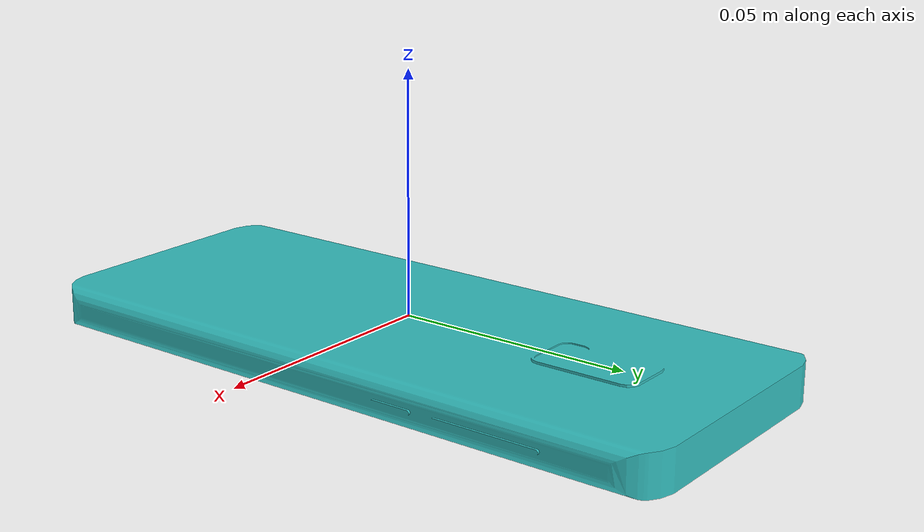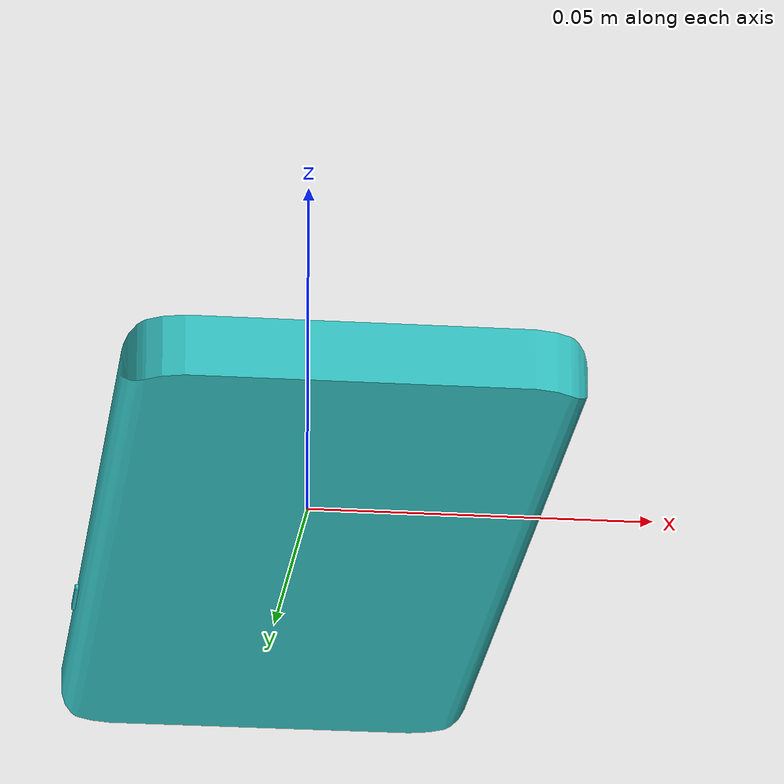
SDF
<sdf version='1.7'>
  <model name='phone_case'>
    <link name='phone_link'>
      <inertial>
        <pose>8.6e-05 0.001936 -0.004242 0 -0 0</pose>
        <mass>1.0756</mass>
        <inertia>
          <ixx>0.00013142</ixx>
          <ixy>-1.34e-08</ixy>
          <ixz>2.7466e-12</ixz>
          <iyy>2.4108e-05</iyy>
          <iyz>-2.5124e-08</iyz>
          <izz>0.00015463</izz>
        </inertia>
      </inertial>
      <collision name='phone_link_collision'>
        <pose>0 0 0 0 -0 0</pose>
        <geometry>
          <mesh>
            <scale>1 1 1</scale>
            <uri>model://phone_case/meshes/phone_link.STL</uri>
          </mesh>
        </geometry>
        <surface>
          <contact>
            <ode/>
          </contact>
          <friction>
            <ode/>
          </friction>
        </surface>
      </collision>
      <visual name='phone_link_visual'>
        <pose>0 0 0 0 -0 0</pose>
        <geometry>
          <mesh>
            <scale>1 1 1</scale>
            <uri>model://phone_case/meshes/phone_link.STL</uri>
          </mesh>
        </geometry>
        <material>
          <script>
            <name>Gazebo/Turquoise</name>
            <uri>file://media/materials/scripts/gazebo.material</uri>
          </script>
        </material>
      </visual>
    </link>
  </model>
</sdf>
